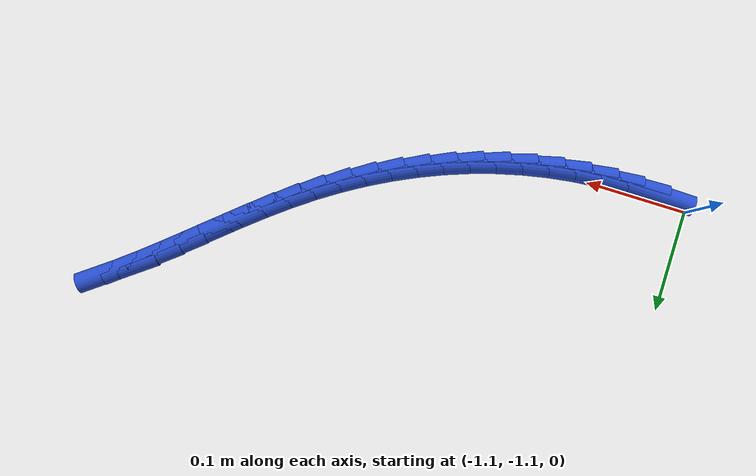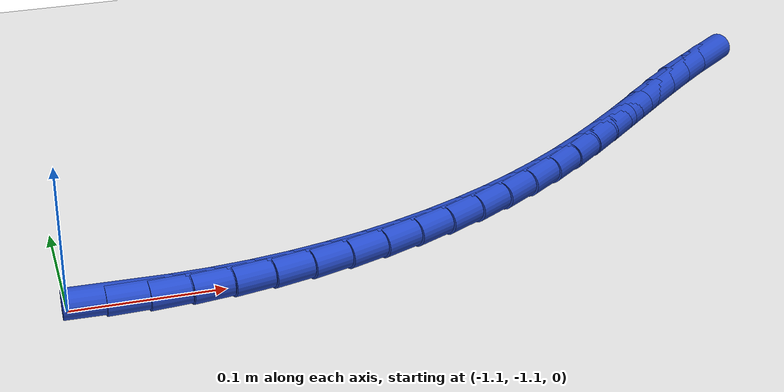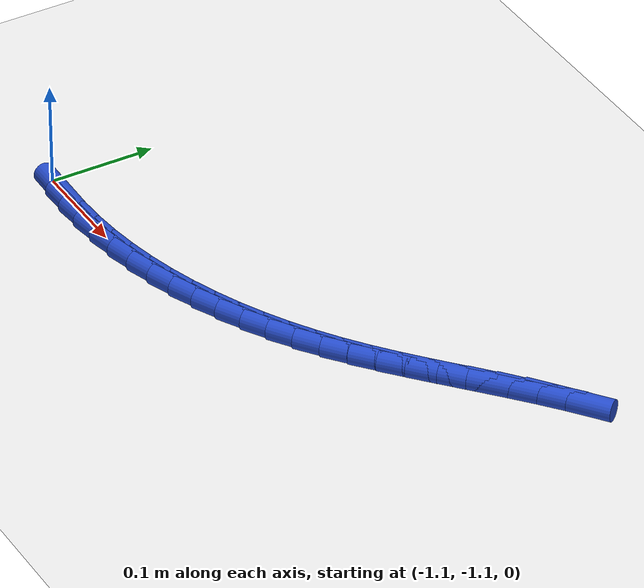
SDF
<sdf version="1.6">
 <world name="default">
  <model name="ground_plane">
   <static>1</static>
   <link name="link">
    <collision name="collision">
     <geometry><plane><normal>0 0 1</normal><size>100 100</size></plane></geometry>
     <surface><friction><ode><mu>100</mu><mu2>50</mu2></ode></friction></surface>
    </collision>
    <visual name="visual">
     <cast_shadows>0</cast_shadows>
     <geometry><plane><normal>0 0 1</normal><size>100 100</size></plane></geometry>
     <material>
      <script><uri>file://media/materials/scripts/gazebo.material</uri><name>Gazebo/WhiteGlow</name></script>
     </material>
    </visual>
   </link>
  </model>
  <model name="line">
   <link name="link_195">
    <pose>-1.0633263625883917 -1.1077368152294311 0.01 0 1.57 -0.02149840009943978</pose>
    <collision name="collision">
     <geometry><cylinder><radius>0.01</radius><length>0.08</length></cylinder></geometry>
    </collision>
    <visual name="visual">
     <material>
      <script><name>Gazebo/Blue</name><uri>file://media/materials/scripts/gazebo.material</uri></script>
     </material>
     <geometry><cylinder><radius>0.01</radius><length>0.08</length></cylinder></geometry>
    </visual>
   </link>
   <link name="link_196">
    <pose>-1.0371629125267163 -1.1082993742175733 0.01 0 1.57 0.036747880294164356</pose>
    <collision name="collision">
     <geometry><cylinder><radius>0.01</radius><length>0.08</length></cylinder></geometry>
    </collision>
    <visual name="visual">
     <material>
      <script><name>Gazebo/Blue</name><uri>file://media/materials/scripts/gazebo.material</uri></script>
     </material>
     <geometry><cylinder><radius>0.01</radius><length>0.08</length></cylinder></geometry>
    </visual>
   </link>
   <link name="link_197">
    <pose>-1.0109675926772688 -1.1073363181946756 0.01 0 1.57 0.0928733643949644</pose>
    <collision name="collision">
     <geometry><cylinder><radius>0.01</radius><length>0.08</length></cylinder></geometry>
    </collision>
    <visual name="visual">
     <material>
      <script><name>Gazebo/Blue</name><uri>file://media/materials/scripts/gazebo.material</uri></script>
     </material>
     <geometry><cylinder><radius>0.01</radius><length>0.08</length></cylinder></geometry>
    </visual>
   </link>
   <link name="link_198">
    <pose>-0.9848613583839714 -1.1049047492256538 0.01 0 1.57 0.1473242131643603</pose>
    <collision name="collision">
     <geometry><cylinder><radius>0.01</radius><length>0.08</length></cylinder></geometry>
    </collision>
    <visual name="visual">
     <material>
      <script><name>Gazebo/Blue</name><uri>file://media/materials/scripts/gazebo.material</uri></script>
     </material>
     <geometry><cylinder><radius>0.01</radius><length>0.08</length></cylinder></geometry>
    </visual>
   </link>
   <link name="link_199">
    <pose>-0.9589651649907442 -1.1010617693754232 0.01 0 1.57 0.20056155780857682</pose>
    <collision name="collision">
     <geometry><cylinder><radius>0.01</radius><length>0.08</length></cylinder></geometry>
    </collision>
    <visual name="visual">
     <material>
      <script><name>Gazebo/Blue</name><uri>file://media/materials/scripts/gazebo.material</uri></script>
     </material>
     <geometry><cylinder><radius>0.01</radius><length>0.08</length></cylinder></geometry>
    </visual>
   </link>
   <link name="link_200">
    <pose>-0.9333997378966319 -1.0958644526463444 0.01 0 1.57 0.25291407649669956</pose>
    <collision name="collision">
     <geometry><cylinder><radius>0.01</radius><length>0.08</length></cylinder></geometry>
    </collision>
    <visual name="visual">
     <material>
      <script><name>Gazebo/Blue</name><uri>file://media/materials/scripts/gazebo.material</uri></script>
     </material>
     <geometry><cylinder><radius>0.01</radius><length>0.08</length></cylinder></geometry>
    </visual>
   </link>
   <link name="link_201">
    <pose>-0.9082570260404649 -1.089366361151319 0.01 0 1.57 0.3042976288996039</pose>
    <collision name="collision">
     <geometry><cylinder><radius>0.01</radius><length>0.08</length></cylinder></geometry>
    </collision>
    <visual name="visual">
     <material>
      <script><name>Gazebo/Blue</name><uri>file://media/materials/scripts/gazebo.material</uri></script>
     </material>
     <geometry><cylinder><radius>0.01</radius><length>0.08</length></cylinder></geometry>
    </visual>
   </link>
   <link name="link_202">
    <pose>-0.8835725700735206 -1.081614172915734 0.01 0 1.57 0.35465026111801873</pose>
    <collision name="collision">
     <geometry><cylinder><radius>0.01</radius><length>0.08</length></cylinder></geometry>
    </collision>
    <visual name="visual">
     <material>
      <script><name>Gazebo/Blue</name><uri>file://media/materials/scripts/gazebo.material</uri></script>
     </material>
     <geometry><cylinder><radius>0.01</radius><length>0.08</length></cylinder></geometry>
    </visual>
   </link>
   <link name="link_203">
    <pose>-0.8593753565106168 -1.0726537660958273 0.01 0 1.57 0.40395506914274654</pose>
    <collision name="collision">
     <geometry><cylinder><radius>0.01</radius><length>0.08</length></cylinder></geometry>
    </collision>
    <visual name="visual">
     <material>
      <script><name>Gazebo/Blue</name><uri>file://media/materials/scripts/gazebo.material</uri></script>
     </material>
     <geometry><cylinder><radius>0.01</radius><length>0.08</length></cylinder></geometry>
    </visual>
   </link>
   <link name="link_204">
    <pose>-0.8356943718665714 -1.062531018847837 0.01 0 1.57 0.4522180663536683</pose>
    <collision name="collision">
     <geometry><cylinder><radius>0.01</radius><length>0.08</length></cylinder></geometry>
    </collision>
    <visual name="visual">
     <material>
      <script><name>Gazebo/Blue</name><uri>file://media/materials/scripts/gazebo.material</uri></script>
     </material>
     <geometry><cylinder><radius>0.01</radius><length>0.08</length></cylinder></geometry>
    </visual>
   </link>
   <link name="link_205">
    <pose>-0.812558602656203 -1.051291809328001 0.01 0 1.57 0.4994657345179994</pose>
    <collision name="collision">
     <geometry><cylinder><radius>0.01</radius><length>0.08</length></cylinder></geometry>
    </collision>
    <visual name="visual">
     <material>
      <script><name>Gazebo/Blue</name><uri>file://media/materials/scripts/gazebo.material</uri></script>
     </material>
     <geometry><cylinder><radius>0.01</radius><length>0.08</length></cylinder></geometry>
    </visual>
   </link>
   <link name="link_206">
    <pose>-0.7899970353943297 -1.0389820156925575 0.01 0 1.57 0.5457424546873472</pose>
    <collision name="collision">
     <geometry><cylinder><radius>0.01</radius><length>0.08</length></cylinder></geometry>
    </collision>
    <visual name="visual">
     <material>
      <script><name>Gazebo/Blue</name><uri>file://media/materials/scripts/gazebo.material</uri></script>
     </material>
     <geometry><cylinder><radius>0.01</radius><length>0.08</length></cylinder></geometry>
    </visual>
   </link>
   <link name="link_207">
    <pose>-0.7680386565957689 -1.0256475160977447 0.01 0 1.57 0.5911079736869281</pose>
    <collision name="collision">
     <geometry><cylinder><radius>0.01</radius><length>0.08</length></cylinder></geometry>
    </collision>
    <visual name="visual">
     <material>
      <script><name>Gazebo/Blue</name><uri>file://media/materials/scripts/gazebo.material</uri></script>
     </material>
     <geometry><cylinder><radius>0.01</radius><length>0.08</length></cylinder></geometry>
    </visual>
   </link>
   <link name="link_208">
    <pose>-0.746712452775339 -1.0113341886998 0.01 0 1.57 0.6348376219097186</pose>
    <collision name="collision">
     <geometry><cylinder><radius>0.01</radius><length>0.08</length></cylinder></geometry>
    </collision>
    <visual name="visual">
     <material>
      <script><name>Gazebo/Blue</name><uri>file://media/materials/scripts/gazebo.material</uri></script>
     </material>
     <geometry><cylinder><radius>0.01</radius><length>0.08</length></cylinder></geometry>
    </visual>
   </link>
   <link name="link_209">
    <pose>-0.7260323129678347 -0.9961022243653017 0.01 0 1.57 0.6711562950686166</pose>
    <collision name="collision">
     <geometry><cylinder><radius>0.01</radius><length>0.08</length></cylinder></geometry>
    </collision>
    <visual name="visual">
     <material>
      <script><name>Gazebo/Blue</name><uri>file://media/materials/scripts/gazebo.material</uri></script>
     </material>
     <geometry><cylinder><radius>0.01</radius><length>0.08</length></cylinder></geometry>
    </visual>
   </link>
   <link name="link_210">
    <pose>-0.7059021361433566 -0.9801160867224954 0.01 0 1.57 0.6974904504146853</pose>
    <collision name="collision">
     <geometry><cylinder><radius>0.01</radius><length>0.08</length></cylinder></geometry>
    </collision>
    <visual name="visual">
     <material>
      <script><name>Gazebo/Blue</name><uri>file://media/materials/scripts/gazebo.material</uri></script>
     </material>
     <geometry><cylinder><radius>0.01</radius><length>0.08</length></cylinder></geometry>
    </visual>
   </link>
   <link name="link_211">
    <pose>-0.6861771386736636 -0.963586391467891 0.01 0 1.57 0.7138830136566658</pose>
    <collision name="collision">
     <geometry><cylinder><radius>0.01</radius><length>0.08</length></cylinder></geometry>
    </collision>
    <visual name="visual">
     <material>
      <script><name>Gazebo/Blue</name><uri>file://media/materials/scripts/gazebo.material</uri></script>
     </material>
     <geometry><cylinder><radius>0.01</radius><length>0.08</length></cylinder></geometry>
    </visual>
   </link>
   <link name="link_212">
    <pose>-0.6667123201771046 -0.9467239597845286 0.01 0 1.57 0.720391253516594</pose>
    <collision name="collision">
     <geometry><cylinder><radius>0.01</radius><length>0.08</length></cylinder></geometry>
    </collision>
    <visual name="visual">
     <material>
      <script><name>Gazebo/Blue</name><uri>file://media/materials/scripts/gazebo.material</uri></script>
     </material>
     <geometry><cylinder><radius>0.01</radius><length>0.08</length></cylinder></geometry>
    </visual>
   </link>
   <link name="link_213">
    <pose>-0.6473626802720276 -0.9297396128554487 0.01 0 1.57 0.7170272312955118</pose>
    <collision name="collision">
     <geometry><cylinder><radius>0.01</radius><length>0.08</length></cylinder></geometry>
    </collision>
    <visual name="visual">
     <material>
      <script><name>Gazebo/Blue</name><uri>file://media/materials/scripts/gazebo.material</uri></script>
     </material>
     <geometry><cylinder><radius>0.01</radius><length>0.08</length></cylinder></geometry>
    </visual>
   </link>
   <link name="link_214">
    <pose>-0.6279832185767822 -0.9128441718636913 0.01 0 1.57 0.7037386594050674</pose>
    <collision name="collision">
     <geometry><cylinder><radius>0.01</radius><length>0.08</length></cylinder></geometry>
    </collision>
    <visual name="visual">
     <material>
      <script><name>Gazebo/Blue</name><uri>file://media/materials/scripts/gazebo.material</uri></script>
     </material>
     <geometry><cylinder><radius>0.01</radius><length>0.08</length></cylinder></geometry>
    </visual>
   </link>
   <link name="link_215">
    <pose>-0.6084289347097165 -0.8962484579922965 0.01 0 1.57 0.6804179649641067</pose>
    <collision name="collision">
     <geometry><cylinder><radius>0.01</radius><length>0.08</length></cylinder></geometry>
    </collision>
    <visual name="visual">
     <material>
      <script><name>Gazebo/Blue</name><uri>file://media/materials/scripts/gazebo.material</uri></script>
     </material>
     <geometry><cylinder><radius>0.01</radius><length>0.08</length></cylinder></geometry>
    </visual>
   </link>
   <link name="link_216">
    <pose>-0.588554828289179 -0.8801632924243047 0.01 0 1.57 0.6469409242981834</pose>
    <collision name="collision">
     <geometry><cylinder><radius>0.01</radius><length>0.08</length></cylinder></geometry>
    </collision>
    <visual name="visual">
     <material>
      <script><name>Gazebo/Blue</name><uri>file://media/materials/scripts/gazebo.material</uri></script>
     </material>
     <geometry><cylinder><radius>0.01</radius><length>0.08</length></cylinder></geometry>
    </visual>
   </link>
  </model>
 </world>
</sdf>
